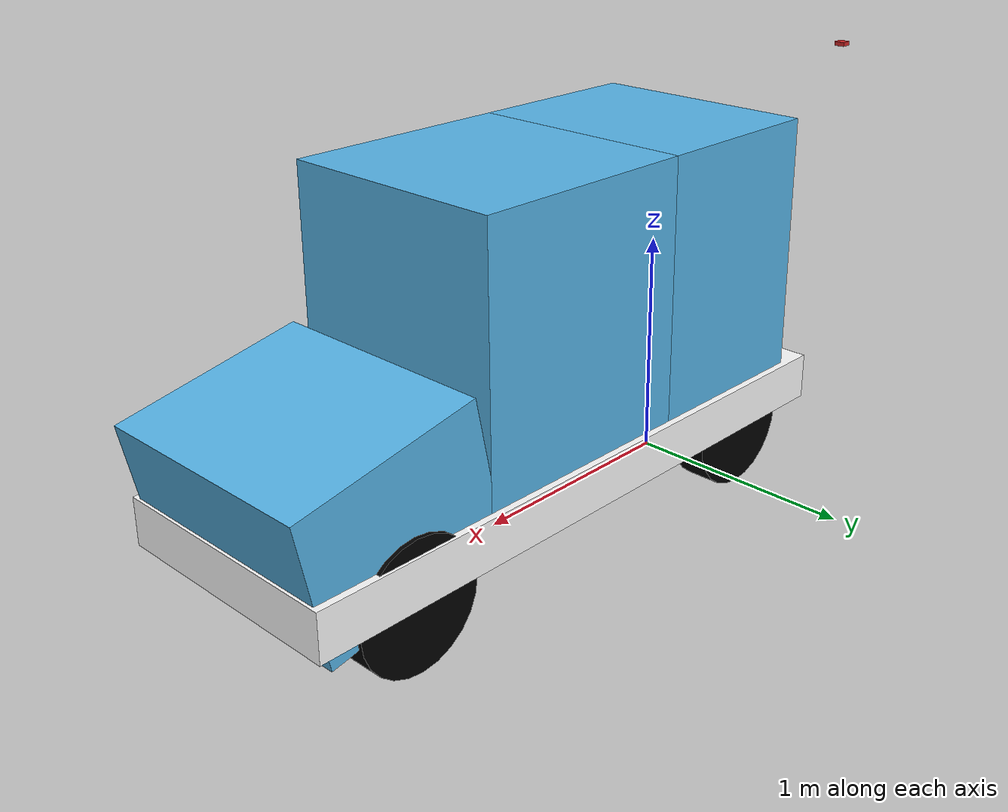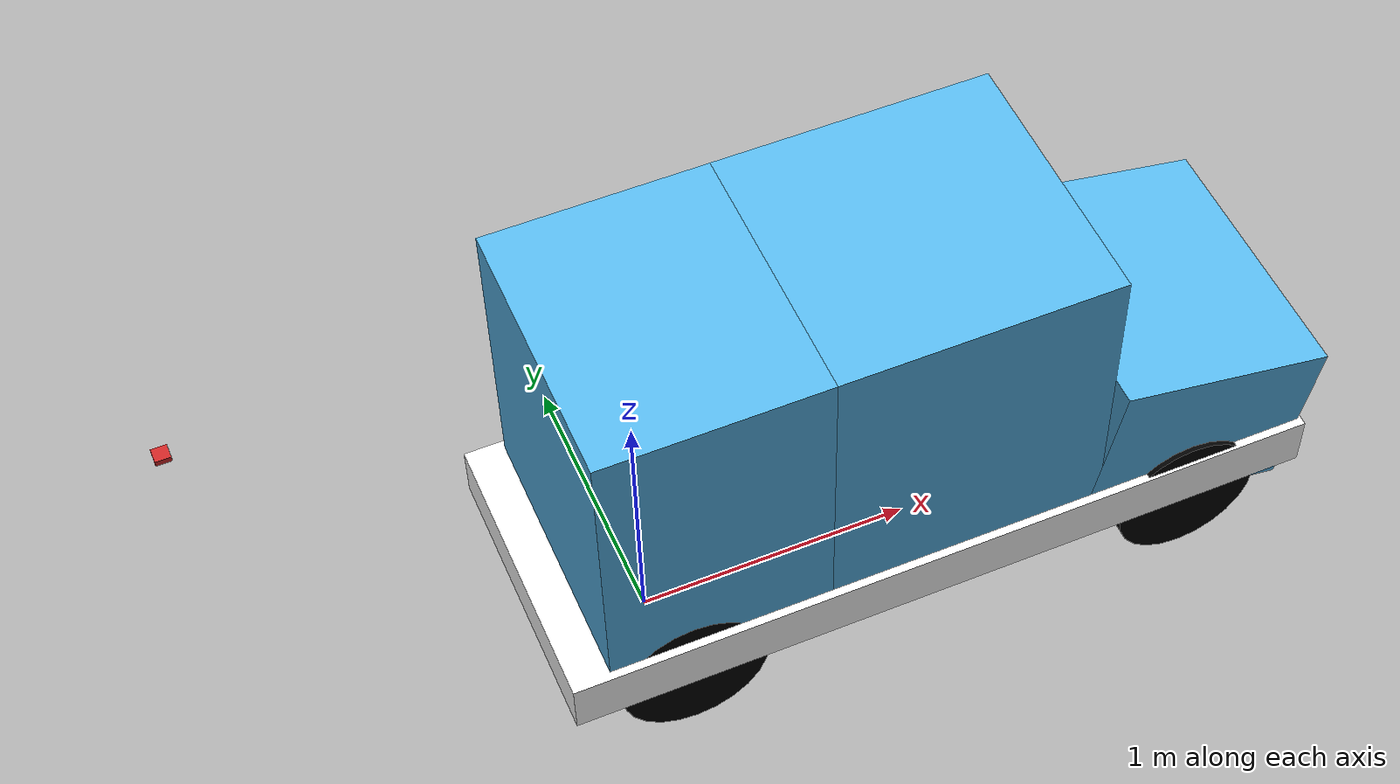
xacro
<?xml version="1.0"?>
<robot name="bee1" xmlns:xacro="http://www.ros.org/wiki/xacro">

  <xacro:property name="wheel_radius" value="0.265" />
  <xacro:property name="wheel_width" value="0.15" />
  <xacro:property name="wheelbase" value="1.860" />
  <xacro:property name="front_track" value="0.886" />
  <xacro:property name="rear_track" value="0.850" />

  <link name="base_footprint"/>

  <joint name="base_joint" type="fixed">
    <parent link="base_footprint"/>
    <child link="base_link"/>
    <origin xyz="0 0 ${wheel_radius}" rpy="0 0 0"/>
  </joint>

  <link name="base_link">
    <visual>
      <origin xyz="${wheelbase / 2.0} 0 0.1" rpy="0 0 0"/>
      <geometry><box size="2.74 1.06 0.2"/></geometry>
      <material name="white"><color rgba="1 1 1 1"/></material>
    </visual>
    <visual>
      <origin xyz="1.0 0 0.7" rpy="0 0 0"/>
      <geometry><box size="1.0 1.0 1.2"/></geometry>
    </visual>
    <visual>
      <origin xyz="1.9 0 0.3" rpy="0 0.2 0"/>
      <geometry><box size="0.8 1.0 0.6"/></geometry>
    </visual>
    <visual>
      <origin xyz="0.1 0 0.7" rpy="0 0 0"/>
      <geometry><box size="0.8 1.0 1.2"/></geometry>
    </visual>

    <collision>
      <origin xyz="${wheelbase / 2.0} 0 0.5" rpy="0 0 0"/>
      <geometry><box size="2.74 1.06 1.0"/></geometry>
    </collision>
    <inertial>
      <origin xyz="0.7 0 0.3" rpy="0 0 0"/>
      <mass value="760.0"/>
      <inertia ixx="100.0" ixy="0.0" ixz="0.0" iyy="100.0" iyz="0.0" izz="100.0"/>
    </inertial>
  </link>

  <xacro:macro name="wheel" params="prefix x y">
    <link name="${prefix}_wheel">
      <visual>
        <origin xyz="0 0 0" rpy="${pi/2} 0 0"/>
        <geometry><cylinder length="${wheel_width}" radius="${wheel_radius}"/></geometry>
        <material name="black"><color rgba="0 0 0 1"/></material>
      </visual>
      <collision>
        <origin xyz="0 0 0" rpy="${pi/2} 0 0"/>
        <geometry><cylinder length="${wheel_width}" radius="${wheel_radius}"/></geometry>
      </collision>
      <inertial>
        <mass value="15.0"/>
        <inertia ixx="0.1" ixy="0" ixz="0" iyy="0.1" iyz="0" izz="0.1"/>
      </inertial>
    </link>
    <joint name="${prefix}_wheel_joint" type="continuous">
      <parent link="base_link"/>
      <child link="${prefix}_wheel"/>
      <origin xyz="${x} ${y} 0" rpy="0 0 0"/>
      <axis xyz="0 1 0"/>
    </joint>
  </xacro:macro>

  <xacro:wheel prefix="rear_right" x="0" y="-${rear_track/2}"/>
  <xacro:wheel prefix="rear_left"  x="0" y="${rear_track/2}"/>
  <xacro:wheel prefix="front_right" x="${wheelbase}" y="-${front_track/2}"/>
  <xacro:wheel prefix="front_left"  x="${wheelbase}" y="${front_track/2}"/>

  <!-- SENSÖRLER[cite: 1] -->
  <!-- 1. Velodyne VLP16 LIDAR -->
<link name="lidar_link">
  <visual>
    <geometry>
      <cylinder radius="0.05" length="0.07"/>
    </geometry>
    <material name="black"/>
  </visual>
</link>

<joint name="lidar_joint" type="fixed">
  <parent link="base_link"/> <!-- Referans: Ön aks merkezi -->
  <child link="lidar_link"/>
  <origin xyz="0.177 0.0 0.620" rpy="0 0 0"/>
</joint>

<!-- 2. ZED2 Stereo Kameralar -->
<!-- Sol Kamera[cite: 2] -->
<link name="camera_left_link">
  <visual>
    <geometry>
      <box size="0.03 0.17 0.03"/>
    </geometry>
    <material name="grey"/>
  </visual>
</link>

<joint name="camera_left_joint" type="fixed">
  <parent link="base_link"/>
  <child link="camera_left_link"/>
  <origin xyz="-0.205 0.060 0.685" rpy="0 0 0"/>
</joint>

<!-- Sağ Kamera[cite: 2] -->
<link name="camera_right_link">
  <visual>
    <geometry>
      <box size="0.03 0.17 0.03"/>
    </geometry>
    <material name="grey"/>
  </visual>
</link>

<joint name="camera_right_joint" type="fixed">
  <parent link="base_link"/>
  <child link="camera_right_link"/>
  <origin xyz="-0.205 -0.060 0.685" rpy="0 0 0"/>
</joint>

<!-- 3. XSENS GPS/IMU[cite: 2] -->
<link name="gps_link">
  <visual>
    <geometry>
      <box size="0.05 0.05 0.02"/>
    </geometry>
    <material name="red"/>
  </visual>
</link>

<joint name="gps_joint" type="fixed">
  <parent link="base_link"/>
  <child link="gps_link"/>
  <origin xyz="-1.440 0.0 1.390" rpy="0 0 0"/>
</joint>

<!-- 4. IMU Link (Yeni Eklendi) -->
  <link name="imu_link">
    <visual>
      <geometry><box size="0.05 0.05 0.02"/></geometry>
      <material name="orange"><color rgba="1.0 0.5 0.0 1"/></material>
    </visual>
  </link>

  <joint name="imu_joint" type="fixed">
    <parent link="base_link"/>
    <child link="imu_link"/>
    <origin xyz="0 0 0" rpy="0 0 0"/> <!-- Genelde merkeze yakın yerleştirilir -->
  </joint>
  <!-- GAZEBO EKLENTİLERİ -->
  <gazebo>
    <plugin name='diff_drive' filename='libgazebo_ros_diff_drive.so'>
      <ros><namespace>/</namespace></ros>
      <left_joint>rear_left_wheel_joint</left_joint>
      <right_joint>rear_right_wheel_joint</right_joint>
      <wheel_separation>${rear_track}</wheel_separation>
      <wheel_diameter>${wheel_radius * 2}</wheel_diameter>
      <max_wheel_torque>200</max_wheel_torque>
      <max_wheel_acceleration>10.0</max_wheel_acceleration>
      <odometry_frame>odom</odometry_frame>
      <robot_base_frame>base_footprint</robot_base_frame>
      <publish_odom>true</publish_odom>
      <publish_odom_tf>true</publish_odom_tf>
      <publish_wheel_tf>true</publish_wheel_tf>
    </plugin>
  </gazebo>

<!-- GAZEBO SENSÖR PLUGINLERI (Simülasyon Verisi İçin) -->

<gazebo reference="lidar_link">
  <sensor name="lidar" type="ray">
    <always_on>true</always_on>
    <visualize>false</visualize>	<!-- 3D tarama ekranını çok kalabalıklatırabilir -->
    <update_rate>10</update_rate>
    <ray>
      <scan>
        <horizontal>
          <samples>360</samples>
          <resolution>1.000000</resolution>
          <min_angle>-3.14159</min_angle>
          <max_angle>3.14159</max_angle>
        </horizontal>
        <!-- 3D için eklenen dikey tarama katmanları -->
        <vertical>
          <samples>16</samples>    <!-- katman sayısı VLP-16 için 16 -->
          <resolution>1.0</resolution>
          <min_angle>-0.261799</min_angle>
          <max_angle>0.261799</max_angle>
        </vertical>
      </scan>
      <range>
        <min>0.8</min>
        <max>100.0</max>
      </range>
    </ray>
    <plugin name="gazebo_ros_laser_controller" filename="libgazebo_ros_ray_sensor.so">
      <ros>
        <remapping>~/out:=points</remapping>
      </ros>
      <!-- PointCloud2 farmatı 3D veriler için zorunlu -->
      <output_type>sensor_msgs/PointCloud2</output_type>
      <frame_name>lidar_link</frame_name>
    </plugin>
  </sensor>
</gazebo>

<gazebo reference="imu_link">
    <sensor name="imu_sensor" type="imu">
      <always_on>true</always_on>
      <update_rate>100</update_rate>
      <visualize>true</visualize>
      <plugin name="imu_controller" filename="libgazebo_ros_imu_sensor.so">
        <ros>
          <remapping>~/out:=imu</remapping>
        </ros>
        <initial_orientation_as_reference>false</initial_orientation_as_reference>
      </plugin>
    </sensor>
</gazebo>

<gazebo reference="gps_link">
  <sensor name="gps_sensor" type="gps">
    <always_on>true</always_on>
    <update_rate>1.0</update_rate>
    <plugin name="gps_controller" filename="libgazebo_ros_gps_sensor.so">
      <ros>
        <remapping>~/out:=gps/data</remapping>
      </ros>
      <frame_name>gps_link</frame_name>
    </plugin>
  </sensor>
</gazebo>

<!-- ZED2 Sol Kamera Gazebo Plugini -->
<gazebo reference="camera_left_link">
  <sensor name="camera_left" type="camera">
    <camera>
      <horizontal_fov>1.91986</horizontal_fov> <!-- 110 derece FOV -->
      <image>
        <width>1280</width>
        <height>720</height>
        <format>R8G8B8</format>
      </image>
      <clip>
        <near>0.1</near>
        <far>100</far>
      </clip>
    </camera>
    <always_on>1</always_on>
    <update_rate>30</update_rate>
    <plugin name="camera_left_controller" filename="libgazebo_ros_camera.so">
      <ros>
        <remapping>~/image_raw:=camera/left/image_raw</remapping>
        <remapping>~/camera_info:=camera/left/camera_info</remapping>
      </ros>
      <camera_name>camera_left</camera_name>
      <frame_name>camera_left_link</frame_name>
    </plugin>
  </sensor>
</gazebo>

<!-- ZED2 Sağ Kamera Gazebo Plugini[cite: 2] -->
<gazebo reference="camera_right_link">
  <sensor name="camera_right" type="camera">
    <camera>
      <horizontal_fov>1.91986</horizontal_fov>
      <image>
        <width>1280</width>
        <height>720</height>
        <format>R8G8B8</format>
      </image>
      <clip>
        <near>0.1</near>
        <far>100</far>
      </clip>
    </camera>
    <always_on>1</always_on>
    <update_rate>30</update_rate>
    <plugin name="camera_right_controller" filename="libgazebo_ros_camera.so">
      <ros>
        <remapping>~/image_raw:=camera/right/image_raw</remapping>
        <remapping>~/camera_info:=camera/right/camera_info</remapping>
      </ros>
      <camera_name>camera_right</camera_name>
      <frame_name>camera_right_link</frame_name>
    </plugin>
  </sensor>
</gazebo>

</robot>
